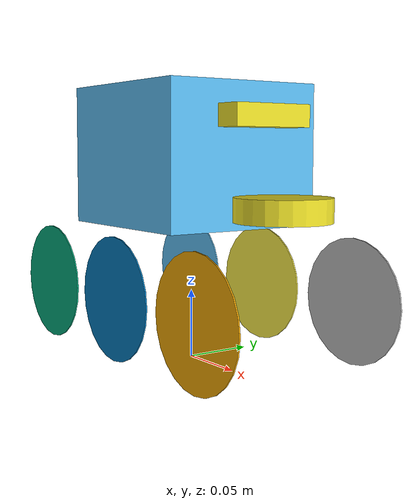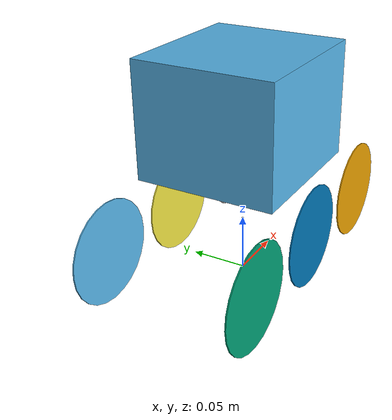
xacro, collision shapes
<?xml version="1.0"?>

<robot name="limo_four_diff" xmlns:xacro="http://ros.org/wiki/xacro">

    <xacro:include filename="$(find limo_description)/urdf/limo_xacro.xacro" />

    <!-- Variables -->
    <xacro:property name="M_PI" value="3.14159"/>

    <!-- Vehicle Geometries -->
    <xacro:property name="base_x_size" value="0.13" />
    <xacro:property name="base_y_size" value="0.12" />
    <xacro:property name="base_z_size" value="0.1" />

    <xacro:property name="wheelbase" value="0.2"/>
    <xacro:property name="track" value="0.13"/>
    <xacro:property name="wheel_vertical_offset" value="-0.10" />
    <xacro:property name="base_mass" value="2.1557"/>

    <xacro:property name="wheel_length" value="0.001" />
    <xacro:property name="wheel_radius" value="0.045" />
  <link name="base_footprint"/>

  <joint name="base_joint" type="fixed">
    <parent link="base_footprint"/>
    <child link="base_link"/>
    <origin xyz="0.0 0.0 0.15" rpy="0 0 0"/>
  </joint>
    <!-- Base link -->
    <link name="base_link">
        <visual>
            <origin xyz="0 0 -0.15" rpy="0 0 1.57" />
            <geometry>
                <mesh filename="package://limo_description/meshes/limo_optimal.dae" scale="1 1 1"/>
            </geometry>
        </visual>
        <collision>
            <!--origin xyz="0 0 -0.15" rpy="0 0 1.57" /-->
            <origin xyz="0 0 0" rpy="0 0 0" />
          <geometry>
              <box size="${base_x_size} ${base_y_size} ${base_z_size}"/>
          </geometry>
        </collision>
    </link>

    <link name="inertial_link">
        <inertial>
            <origin xyz="0.0 0.0 0.0" />
            <mass value="${base_mass}" />
            <inertia ixx="0.0043832566666666675" ixy="0" ixz="0"
                     iyy="0.004832360833333334" iyz="0"
                     izz="0.005622784166666667" />
        </inertial>
    </link>

    <joint name="inertial_joint" type="fixed">
        <origin xyz="0 0 0" rpy="0 0 0" />
        <parent link="base_link" />
        <child link="inertial_link" />
    </joint>

    <xacro:limo_laser parent_prefix="base_link" frame_prefix="laser">
        <origin xyz="0.103 0 -0.034" rpy="0 0 0"/>
    </xacro:limo_laser>

    <xacro:limo_depth_camera parent_prefix="base_link" frame_prefix="depth_camera">
        <origin xyz="0.084 0 0.026" rpy="0 0 0"/>
    </xacro:limo_depth_camera>

    <xacro:limo_imu parent_prefix="base_link" frame_prefix="imu">
        <origin xyz="0.0 0 -0.1" rpy="0 0 0"/>
    </xacro:limo_imu>

    <xacro:limo_wheel parent_prefix="base_link" wheel_prefix="front_left" reflect="1" fixed_on="true">
        <origin xyz="${wheelbase/2} ${track/2} ${wheel_vertical_offset}" rpy="0 0  0" />
    </xacro:limo_wheel>

    <xacro:limo_wheel parent_prefix="base_link" wheel_prefix="front_right" reflect="-1" fixed_on="true">
        <origin xyz="${wheelbase/2} ${-track/2} ${wheel_vertical_offset}" rpy="${M_PI} 0 0" />
    </xacro:limo_wheel>

    <xacro:limo_wheel parent_prefix="base_link" wheel_prefix="rear_left" reflect="1" fixed_on="true">
        <origin xyz="${-wheelbase/2} ${track/2} ${wheel_vertical_offset}" rpy="0 0 0" />
    </xacro:limo_wheel>

    <xacro:limo_wheel parent_prefix="base_link" wheel_prefix="rear_right" reflect="-1" fixed_on="true">
        <origin xyz="${-wheelbase/2} ${-track/2} ${wheel_vertical_offset}" rpy="${M_PI} 0 0" />
    </xacro:limo_wheel>

    <!-- Simulation Wheels for better movement -->
    <xacro:limo_wheel parent_prefix="base_link" wheel_prefix="center_left" reflect="1" visual_on="false">
        <origin xyz="0.0 ${track/2} ${wheel_vertical_offset}" rpy="0 0 0" />
    </xacro:limo_wheel>

    <xacro:limo_wheel parent_prefix="base_link" wheel_prefix="center_right" reflect="-1" visual_on="false">
        <origin xyz="0.0 ${-track/2} ${wheel_vertical_offset}" rpy="${M_PI} 0 0" />
    </xacro:limo_wheel>

    <gazebo reference="imu_link">
    <gravity>true</gravity>
    <sensor name="twr_imu" type="imu">
      <always_on>true</always_on>
      <update_rate>100</update_rate>
      <visualize>true</visualize>
      <imu>
        <orientation>
          <x>
            <noise type="gaussian">
              <mean>0.0</mean>
              <stddev>2e-3</stddev>
            </noise>
          </x>
          <y>
            <noise type="gaussian">
              <mean>0.0</mean>
              <stddev>2e-3</stddev>
            </noise>
          </y>
          <z>
            <noise type="gaussian">
              <mean>0.0</mean>
              <stddev>2e-3</stddev>
            </noise>
          </z>
        </orientation>
        <angular_velocity>
          <x>
            <noise type="gaussian">
              <mean>0.0</mean>
              <stddev>2e-4</stddev>
            </noise>
          </x>
          <y>
            <noise type="gaussian">
              <mean>0.0</mean>
              <stddev>2e-4</stddev>
            </noise>
          </y>
          <z>
            <noise type="gaussian">
              <mean>0.0</mean>
              <stddev>2e-4</stddev>
            </noise>
          </z>
        </angular_velocity>
        <linear_acceleration>
          <x>
            <noise type="gaussian">
              <mean>0.0</mean>
              <stddev>1.7e-2</stddev>
            </noise>
          </x>
          <y>
            <noise type="gaussian">
              <mean>0.0</mean>
              <stddev>1.7e-2</stddev>
            </noise>
          </y>
          <z>
            <noise type="gaussian">
              <mean>0.0</mean>
              <stddev>1.7e-2</stddev>
            </noise>
          </z>
        </linear_acceleration>
      </imu>
      <plugin name="two_wheeled_robot_imu" filename="libgazebo_ros_imu_sensor.so">
        <initial_orientation_as_reference>false</initial_orientation_as_reference>
        <frame_name>imu_link</frame_name>
        <ros>
          <remapping>~/out:=imu</remapping>
        </ros>
      </plugin>
    </sensor>
</gazebo>
<gazebo reference="laser_link">
    <sensor name="laser" type="ray">
      <always_on>true</always_on>
      <visualize>false</visualize>
      <update_rate>10</update_rate>
      <ray>
        <scan>
          <horizontal>
            <samples>120</samples>
            <resolution>1.000000</resolution>
            <min_angle>-3.14159</min_angle>
            <max_angle>3.14159</max_angle>
          </horizontal>
        </scan>
        <range>
          <min>0.3</min>
          <max>15.0</max>
          <resolution>0.015</resolution>
        </range>
        <noise>
          <type>gaussian</type>
          <mean>0.0</mean>
          <stddev>0.01</stddev>
        </noise>
      </ray>
      <plugin name="scan" filename="libgazebo_ros_ray_sensor.so">
        <ros>
          <remapping>~/out:=scan</remapping>
        </ros>
        <output_type>sensor_msgs/LaserScan</output_type>
        <frame_name>laser_link</frame_name>
      </plugin>
    </sensor>
  </gazebo>

    <gazebo reference="front_left_wheel_link">
        <mu1>0</mu1>
        <mu2>0</mu2>
        <kp>10000000.0</kp>
        <kd>1.0</kd>
        <minDepth>0.01</minDepth>
        <fdir1>1 0 0</fdir1>
        <maxContacts value="4"/>
    </gazebo>
    <gazebo reference="front_right_wheel_link">
        <mu1>0</mu1>
        <mu2>0</mu2>
        <kp>10000000.0</kp>
        <kd>1.0</kd>
        <minDepth>0.01</minDepth>
        <fdir1>1 0 0</fdir1>
        <maxContacts value="4"/>
    </gazebo>
    <gazebo reference="rear_left_wheel_link">
        <mu1>0</mu1>
        <mu2>0</mu2>
        <kp>10000000.0</kp>
        <kd>1.0</kd>
        <minDepth>0.01</minDepth>
        <fdir1>1 0 0</fdir1>
        <maxContacts value="4"/>
    </gazebo>
    <gazebo reference="rear_right_wheel_link">
        <mu1>0</mu1>
        <mu2>0</mu2>
        <kp>10000000.0</kp>
        <kd>1.0</kd>
        <minDepth>0.01</minDepth>
        <fdir1>1 0 0</fdir1>
        <maxContacts value="4"/>
    </gazebo>

    <gazebo reference="center_left_wheel_link">
        <mu1>100</mu1>
        <mu2>100</mu2>
        <kp>10000000.0</kp>
        <kd>1.0</kd>
        <minDepth>0.01</minDepth>
        <fdir1>1 0 0</fdir1>
        <maxContacts value="4"/>
    </gazebo>
    <gazebo reference="center_right_wheel_link">
        <mu1>100</mu1>
        <mu2>100</mu2>
        <kp>10000000.0</kp>
        <kd>1.0</kd>
        <minDepth>0.01</minDepth>
        <fdir1>1 0 0</fdir1>
        <maxContacts value="4"/>
    </gazebo>

    <gazebo>
      <plugin filename="libgazebo_ros_diff_drive.so" name="four_diff_controller">
        <left_joint>center_left_wheel</left_joint>
        <right_joint>center_right_wheel</right_joint>
        <!-- kinematics -->
        <wheel_separation>0.172</wheel_separation>
        <wheel_diameter>0.09</wheel_diameter>
        <!-- limits -->
        <max_wheel_torque>20</max_wheel_torque>
        <max_wheel_acceleration>1.0</max_wheel_acceleration>
        <!-- output -->
        <publish_odom>true</publish_odom>
        <publish_odom_tf>true</publish_odom_tf>
        <publish_wheel_tf>true</publish_wheel_tf>
        <odometry_topic>odom</odometry_topic>
        <odometry_frame>odom</odometry_frame>
        <robot_base_frame>base_footprint</robot_base_frame>
        <odometry_source>1</odometry_source>
        <command_topic>cmd_vel</command_topic>
        <ros>
        </ros>
      </plugin>
    </gazebo>

    <link name="camera_depth_optical_frame"/>

    <joint name="camera_depth_optical_joint" type="fixed">
      <origin xyz="0 0 0" rpy="${-M_PI/2} 0 ${-M_PI/2}" />
      <parent link="depth_camera_link" />
      <child link="camera_depth_optical_frame" />
    </joint>

<!-- Optical frame is the frame in whihc the depth points are publish-->
<!-- Reference frame is the frame rect to whihc we position teh optical frame-->
<gazebo reference="depth_camera_link">
          <sensor name="sensor_camera" type="depth">
            <pose>0.0 0.0 0.0 0.0 0.0 0.0</pose>
            <always_on>1</always_on>
            <update_rate>10</update_rate>
            <visualize>1</visualize>

            <camera name="limo_camera">
              <!-- TC:Removed distorsion due to strange artifacts in image renderer-->
              <image>
                <format>R8G8B8</format>
                <width>400</width>
                <height>400</height>
              </image>
              <clip>
                <near>0.01</near>
                <far>10.0</far>
              </clip>
            </camera>

            <plugin name="gazebo_ros_depth_camera_sensor" filename="libgazebo_ros_camera.so">

              <ros>
                <namespace>/limo</namespace>
                <argument>limo_camera/image_raw:=limo_camera/image</argument>
                <argument>limo_camera/image_depth:=limo_camera/depth/camera_image_depth</argument>
                <argument>limo_camera/camera_info:=limo_camera/camera_info_raw</argument>
                <argument>limo_camera/camera_info_depth:=limo_camera/camera_info_depth</argument>
                <argument>limo_camera/points:=limo_camera/camera_points</argument>
              </ros>
              <camera_name>depth_camera_link</camera_name>
              <frame_name>camera_depth_optical_frame</frame_name>
              <hack_baseline>0.07</hack_baseline>
              <min_depth>0.001</min_depth>

            </plugin>
        </sensor>
          </gazebo>

</robot>

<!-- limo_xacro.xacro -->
<robot name="limo_xacro" xmlns:xacro="http://ros.org/wiki/xacro">
    <xacro:macro name="limo_wheel" params="parent_prefix wheel_prefix reflect *joint_pose visual_on:=true fixed_on:=false">
        <link name="${wheel_prefix}_wheel_link">
            <inertial>
                <origin xyz="0 ${wheel_length/2} 0" rpy="1.57 0 0" />
                <mass value="0.5" />
                <inertia ixx="0.00033749999999999996" ixy="0" ixz="0" iyy="0.00033749999999999996" iyz="0" izz="0.00050625" />
            </inertial>
            <xacro:if value="${visual_on}">
                <visual>
                    <origin xyz="0 0 0" rpy="0 0 0" />
                    <geometry>
                        <mesh filename="package://limo_description/meshes/limo_optimal_wheels.dae" />
                    </geometry>
                </visual>
            </xacro:if>
            <collision>
              <origin xyz="0 ${wheel_length/2} 0" rpy="1.57 0 0" />
              <geometry>
                  <cylinder length="${wheel_length}" radius="0.044" />
              </geometry>
            </collision>
        </link>

        <!-- Conditionally set the joint type -->
        <xacro:if value="${fixed_on}">
            <joint name="${wheel_prefix}_wheel" type="fixed">
                <parent link="${parent_prefix}"/>
                <child link="${wheel_prefix}_wheel_link"/>
                <xacro:insert_block name="joint_pose"/>
            </joint>
        </xacro:if>
        <xacro:unless value="${fixed_on}">
            <joint name="${wheel_prefix}_wheel" type="continuous">
                <parent link="${parent_prefix}"/>
                <child link="${wheel_prefix}_wheel_link"/>
                <xacro:insert_block name="joint_pose"/>
                <axis xyz="0 ${reflect*1} 0"/>
                <limit effort="20.0" velocity="10.0"/>
            </joint>
        </xacro:unless>

    </xacro:macro>

    <!-- New macro for center wheel with different radius -->
    <xacro:macro name="limo_center_wheel" params="parent_prefix wheel_prefix reflect *joint_pose visual_on:=true fixed_on:=false">
        <link name="${wheel_prefix}_wheel_link">
            <inertial>
                <origin xyz="0 ${wheel_length/2} 0" rpy="1.57 0 0" />
                <mass value="0.5" />
                <inertia ixx="0.00033749999999999996" ixy="0" ixz="0" iyy="0.00033749999999999996" iyz="0" izz="0.00050625" />
            </inertial>
            <xacro:if value="${visual_on}">
                <visual>
                    <origin xyz="0 0 0" rpy="0 0 0" />
                    <geometry>
                        <mesh filename="package://limo_description/meshes/limo_optimal_wheels.dae" />
                    </geometry>
                </visual>
            </xacro:if>
            <collision>
              <origin xyz="0 ${wheel_length/2} 0" rpy="1.57 0 0" />
              <geometry>
                  <cylinder length="${wheel_length}" radius="${center_wheel_radius}" />
              </geometry>
            </collision>
        </link>

        <!-- Conditionally set the joint type -->
        <xacro:if value="${fixed_on}">
            <joint name="${wheel_prefix}_wheel" type="fixed">
                <parent link="${parent_prefix}"/>
                <child link="${wheel_prefix}_wheel_link"/>
                <xacro:insert_block name="joint_pose"/>
            </joint>
        </xacro:if>
        <xacro:unless value="${fixed_on}">
            <joint name="${wheel_prefix}_wheel" type="continuous">
                <parent link="${parent_prefix}"/>
                <child link="${wheel_prefix}_wheel_link"/>
                <xacro:insert_block name="joint_pose"/>
                <axis xyz="0 ${reflect*1} 0"/>
                <limit effort="20.0" velocity="10.0"/>
            </joint>
        </xacro:unless>
    </xacro:macro>

    <xacro:macro name="limo_laser" params="parent_prefix frame_prefix *joint_pose">
        <link name='${frame_prefix}_link'>
            <pose>0 0 0 0 0 0</pose>
            <inertial>
                <mass value="0.1"/>
                <origin xyz="0.0 0 0" rpy="0 0 0"/>
                <inertia
                    ixx="1e-6" ixy="0" ixz="0"
                    iyy="1e-6" iyz="0"
                    izz="1e-6"
                />
            </inertial>
            <visual name='laser_visual'>
                <origin xyz="0 0 0" rpy="0 0 0"/>
                <geometry>
                    <cylinder radius="0.02" length="0.01"/>
                </geometry>
            </visual>
            <collision name='laser_collision'>
                <origin xyz="0 0 0" rpy="0 0 0"/>
                <geometry>
                    <cylinder radius="0.032" length="0.016"/>
                </geometry>
            </collision>
        </link>
        <joint type="fixed" name="laser_joint">
            <xacro:insert_block name="joint_pose"/>
            <child link="${frame_prefix}_link"/>
            <parent link="${parent_prefix}"/>
        </joint>
        <gazebo reference="${frame_prefix}_link">
            <material>Gazebo/Yellow</material>
        </gazebo>
    </xacro:macro>

    <xacro:macro name="limo_depth_camera" params="parent_prefix frame_prefix *joint_pose">
        <link name='${frame_prefix}_link'>
            <pose>0 0 0 0 0 0</pose>
            <inertial>
                <mass value="0.1"/>
                <origin xyz="0.0 0 0" rpy="0 0 0"/>
                <inertia
                    ixx="1e-6" ixy="0" ixz="0"
                    iyy="1e-6" iyz="0"
                    izz="1e-6"
                />
            </inertial>
            <collision name='depth_camera_collision'>
                <origin xyz="0 0 0" rpy="0 0 0"/>
                <geometry>
                    <box size="0.02 0.06 0.015"/>
                </geometry>
            </collision>

        </link>

        <joint type="fixed" name="depth_camera_joint">
            <xacro:insert_block name="joint_pose"/>
            <child link="${frame_prefix}_link"/>
            <parent link="${parent_prefix}"/>
        </joint>
        <link name="depth_link"></link>

        <joint name="${frame_prefix}_to_camera_joint" type="fixed">
            <origin xyz="0 0 0" rpy="${-M_PI/2} 0 ${-M_PI/2} "/>
            <parent link="${frame_prefix}_link"/>
            <child link="depth_link"/>
          </joint>

        <gazebo reference="${frame_prefix}_link">
            <material>Gazebo/Yellow</material>
        </gazebo>
    </xacro:macro>

    <xacro:macro name="limo_imu" params="parent_prefix frame_prefix  *joint_pose">
        <link name='${frame_prefix}_link'>
            <pose>0 0 0 0 0 0</pose>
            <inertial>
                <mass value="0.01"/>
                <origin xyz="0.0 0 0" rpy="0 0 0"/>
                <inertia
                    ixx="1e-7" ixy="0" ixz="0"
                    iyy="1e-7" iyz="0"
                    izz="1e-7"
                />
            </inertial>
            <visual name='imu_visual'>
                <origin xyz="0 0 0" rpy="0 0 0"/>
                <geometry>
                    <box size="0.001 0.001 0.001"/>
                </geometry>
            </visual>
            <collision name='imu_collision'>
                <origin xyz="0 0 0" rpy="0 0 0"/>
                <geometry>
                    <box size="0.001 0.001 0.001"/>
                </geometry>
            </collision>
        </link>
        <joint type="fixed" name="imu_joint">
            <xacro:insert_block name="joint_pose"/>
            <child link="${frame_prefix}_link"/>
            <parent link="${parent_prefix}"/>
        </joint>
        <gazebo reference="${frame_prefix}_link">
            <material>Gazebo/Yellow</material>
        </gazebo>
    </xacro:macro>
</robot>
